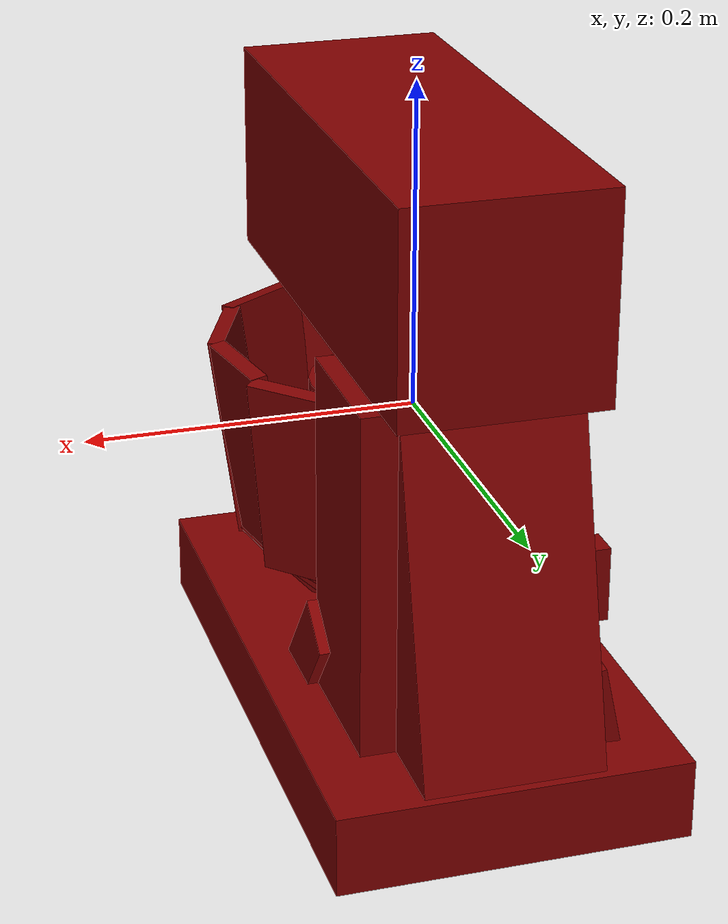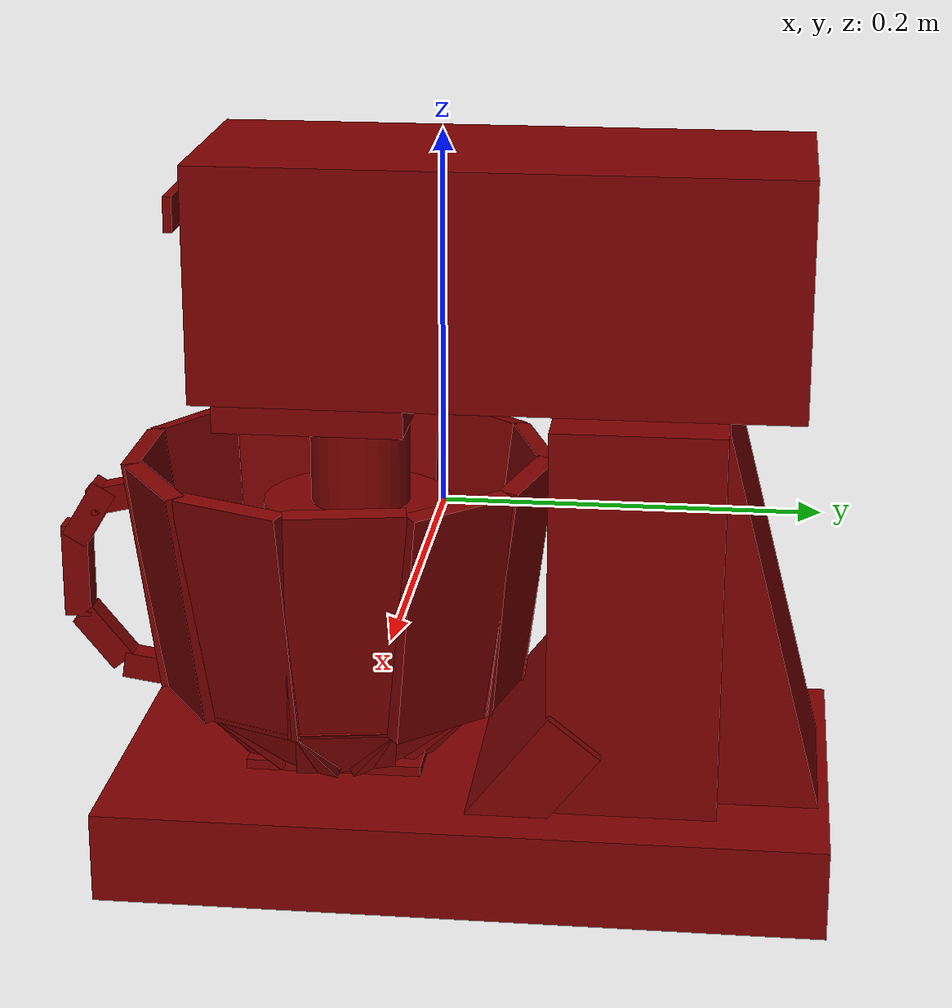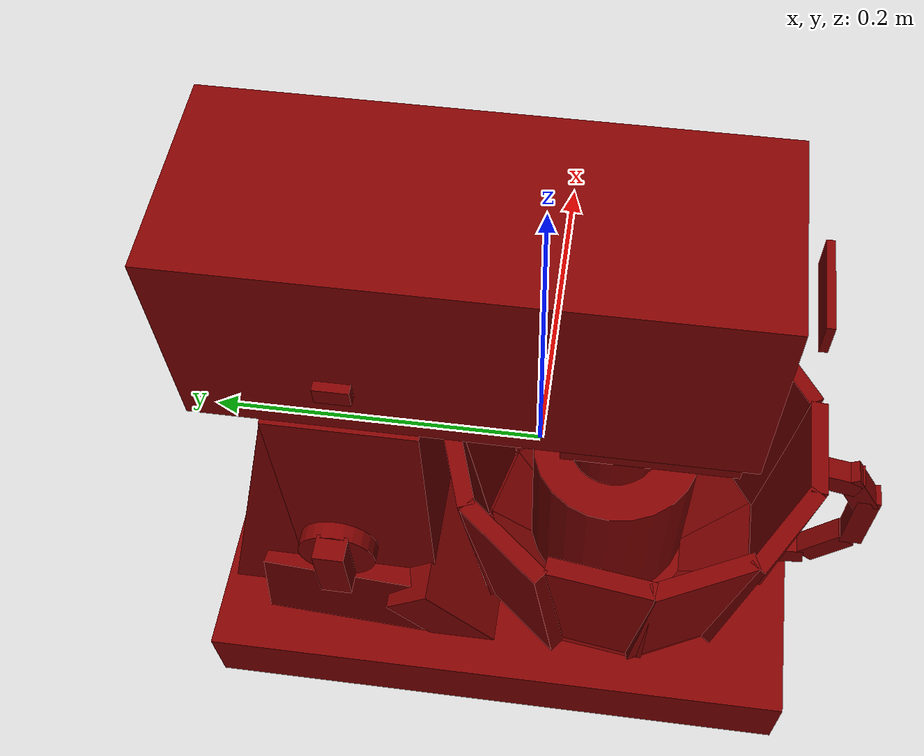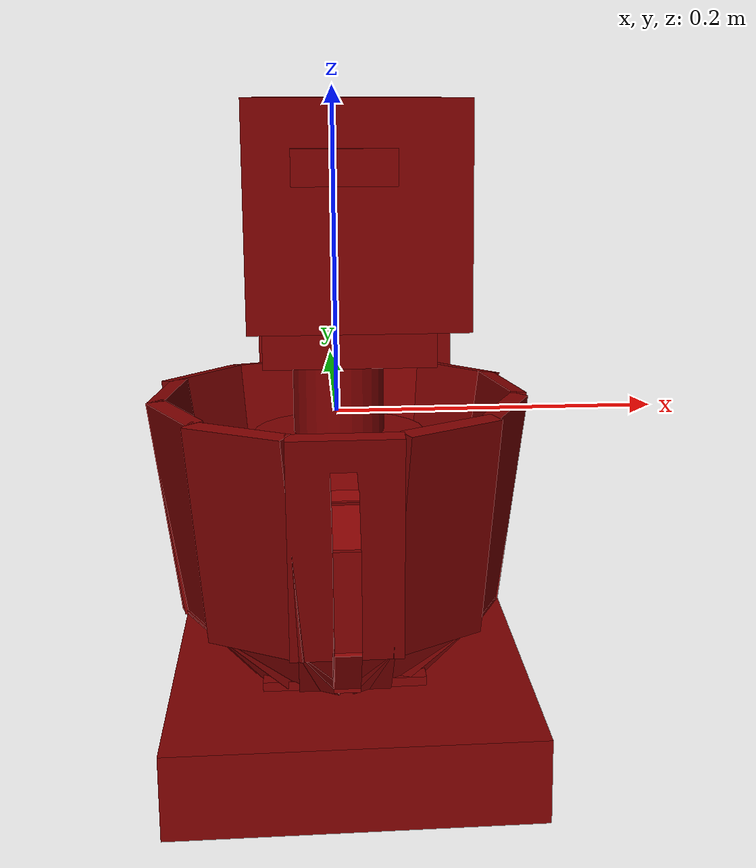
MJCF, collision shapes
<?xml version='1.0' encoding='UTF-8'?>
<mujoco model="model">
  <option timestep="0.002" gravity="0.0 0.0 -9.81"/>
  <compiler angle="radian"/>
  <asset>
    <mesh file="visuals/Blender001.obj" name="Blender001_vis"/>
    <mesh file="visuals/Body001.obj" name="Body001_vis"/>
    <mesh file="visuals/Button001.obj" name="Button001_vis"/>
    <mesh file="visuals/Container001_Clear.obj" name="Container001_Clear_vis"/>
    <mesh file="visuals/Knob001.obj" name="Knob001_vis"/>
    <mesh file="visuals/Lid001.obj" name="Lid001_vis"/>
    <texture file="visuals/T_BC001.png" name="Body001_material" type="2d"/>
    <material name="Body001_material" rgba="1 1 1 1.0" texture="Body001_material" shininess="0.141421377658844" specular="2"/>
    <texture file="visuals/T_BC001.png" name="Container001_Clear_material" type="2d"/>
    <material name="Container001_Clear_material" rgba="1 1 1 0.699999988079071" texture="Container001_Clear_material" shininess="0.5" specular="0.3103448502657381"/>
    <texture file="visuals/T_BC001.png" name="Knob001_material" type="2d"/>
    <material name="Knob001_material" rgba="1 1 1 1.0" texture="Knob001_material" shininess="0.141421377658844" specular="0.3103448502657381"/>
    <texture file="visuals/T_BC001.png" name="Lid001_material" type="2d"/>
    <material name="Lid001_material" rgba="1 1 1 1.0" texture="Lid001_material" shininess="0.141421377658844" specular="2"/>
    <texture file="visuals/T_BC001.png" name="Blender001_material" type="2d"/>
    <material name="Blender001_material" rgba="1 1 1 1.0" texture="Blender001_material" shininess="0.141421377658844" specular="2"/>
    <texture file="visuals/T_BC001.png" name="Button001_material" type="2d"/>
    <material name="Button001_material" rgba="1 1 1 1.0" texture="Button001_material" shininess="0.141421377658844" specular="0.3103448502657381"/>
  </asset>
  <default>
    <default class="visual">
      <geom conaffinity="0" contype="0" group="1" type="mesh"/>
    </default>
    <default class="collision">
      <geom group="0" rgba="0.5 0 0 0.5"/>
    </default>
    <default class="spawn">
      <geom group="0" rgba="1 1 1 0.5" contype="0" conaffinity="0"/>
      <site group="0" rgba="1 1 1 0.5"/>
    </default>
    <default class="region">
      <geom group="1" conaffinity="0" contype="0" rgba="0 1 0 0"/>
    </default>
  </default>
  <worldbody>
    <body>
      <body name="object">
        <geom mesh="Body001_vis" type="mesh" solimp="0.998 0.998 0.001" solref="0.001 1" friction="0.95 0.3 0.1" class="visual" material="Body001_material"/>
        <geom class="collision" type="box" pos="0.004136181436479092 0.01786668971180916 -0.16853773593902588" size="0.10509423911571503 0.19198651611804962 0.024382835254073143" quat="1.0 0.0 0.0 0.0" density="1000.0"/>
        <geom class="collision" type="box" pos="0.014389991760253906 0.10672037303447723 -0.04465880244970322" size="0.06403841078281403 0.04471368342638016 0.10858464986085892" quat="1.0 0.0 0.0 0.0" density="1000.0"/>
        <geom class="collision" type="box" pos="0.00377702247351408 0.1449136734008789 -0.053486332297325134" size="0.05342536419630051 0.03497549518942833 0.10858449339866638" quat="0.9921606779098511 0.12496867775917053 0.0 0.0" density="1000.0"/>
        <geom class="collision" type="box" pos="-0.051647596061229706 0.12047339975833893 -0.1377274990081787" size="0.018421867862343788 0.05432158708572388 0.03744156286120415" quat="0.9942537546157837 0.005240248050540686 0.10371925681829453 -0.025967644527554512" density="1000.0"/>
        <geom class="collision" type="box" pos="0.004668226465582848 0.055716026574373245 -0.12692657113075256" size="0.0801771879196167 0.01732339896261692 0.035333048552274704" quat="0.9452009797096252 -0.32648903131484985 8.213555405049802e-17 -3.843171288608135e-18" density="1000.0"/>
        <body name="Container001_Clear">
          <joint axis="0.0 0.0 1.0" pos="-0.0005257651209831238 -0.0789135992527008 -0.059751711785793304" limited="true" name="Container001_Clear_joint" range="0.0 0.1" type="slide" damping="1" frictionloss="1" armature=".01" stiffness="0.05"/>
          <geom mesh="Container001_Clear_vis" type="mesh" solimp="0.998 0.998 0.001" solref="0.001 1" friction="0.95 0.3 0.1" class="visual" material="Container001_Clear_material"/>
          <geom class="collision" type="box" pos="-0.0009703244431875646 -0.20282290875911713 -0.04803609475493431" size="0.006921510212123394 0.007254461292177439 0.0261028204113245" quat="1.0 0.0 0.0 0.0" density="1000.0"/>
          <geom class="collision" type="box" pos="-1.0378425940871239e-07 -0.15471623837947845 -0.0394369475543499" size="0.030952803790569305 0.005150009412318468 0.06397952884435654" quat="0.9977524280548096 0.0670078843832016 0.0 0.0" density="1000.0"/>
          <geom class="collision" type="box" pos="-1.0477378964424133e-07 -0.12336526811122894 -0.11784543097019196" size="0.026411505416035652 0.004394416231662035 0.029332507401704788" quat="0.920957088470459 0.38966402411460876 0.0 0.0" density="1000.0"/>
          <geom class="collision" type="box" pos="-0.0009703244431875646 -0.19401103258132935 -0.014867784455418587" size="0.006921510212123394 0.007254461292177439 0.017530929297208786" quat="0.9638471007347107 -0.26645591855049133 5.916509916448017e-17 3.427577361788592e-24" density="1000.0"/>
          <geom class="collision" type="box" pos="-0.0009703244431875646 -0.17678330838680267 -0.004273727536201477" size="0.006921510212123394 0.007254461292177439 0.017530929297208786" quat="0.7835782766342163 -0.6212930679321289 1.379548002814298e-16 1.4813077039224547e-23" density="1000.0"/>
          <geom class="collision" type="box" pos="-0.0009703244431875646 -0.18935756385326385 -0.08684796839952469" size="0.006921510212123394 0.007254461292177439 0.017530929297208786" quat="0.33292779326438904 -0.9429523348808289 2.0937751836641887e-16 -5.017840680117046e-26" density="1000.0"/>
          <geom class="collision" type="box" pos="-0.0009703244431875646 -0.1609417349100113 -0.10476876050233841" size="0.006921510212123394 0.007254461292177439 0.017530933022499084" quat="0.652040421962738 -0.7581841945648193 1.6835072317743818e-16 -1.721387738551245e-23" density="1000.0"/>
          <geom class="collision" type="box" pos="-1.043081283569336e-07 -0.05499269440770149 -0.13915318250656128" size="0.047284457832574844 0.047284457832574844 0.0026816660538315773" quat="1.0 0.0 0.0 0.0" density="1000.0"/>
          <geom class="collision" type="box" pos="-0.05187143757939339 -0.138958141207695 -0.03930528089404106" size="0.030952803790569305 0.005150009412318468 0.06397952884435654" quat="0.9580460786819458 0.06434125453233719 -0.018715236335992813 -0.2786712646484375" density="1000.0"/>
          <geom class="collision" type="box" pos="-0.03557918593287468 -0.11332201957702637 -0.11784543097019196" size="0.026411505416035652 0.004394416231662035 0.029332507401704788" quat="0.884306788444519 0.3741571307182312 -0.10883278399705887 -0.25722238421440125" density="1000.0"/>
          <geom class="collision" type="box" pos="-0.08415845781564713 -0.09748408198356628 -0.03880316764116287" size="0.030952800065279007 0.005150009412318468 0.06397952884435654" quat="0.843376636505127 0.05664019286632538 -0.035804279148578644 -0.5331283211708069" density="1000.0"/>
          <geom class="collision" type="box" pos="-0.060081835836172104 -0.08605004847049713 -0.11784543097019196" size="0.026411505416035652 0.004394416697323322 0.029332507401704788" quat="0.7784633636474609 0.329373836517334 -0.20820890367031097 -0.4920942485332489" density="1000.0"/>
          <geom class="collision" type="box" pos="-0.09156394004821777 -0.045626815408468246 -0.038659241050481796" size="0.030952803790569305 0.0051500084809958935 0.06397952884435654" quat="0.6574471592903137 0.04415338486433029 -0.05040373280644417 -0.7505152821540833" density="1000.0"/>
          <geom class="collision" type="box" pos="-0.06619956344366074 -0.0489947646856308 -0.11784543097019196" size="0.026411505416035652 0.004394416231662035 0.029332507401704788" quat="0.6068445444107056 0.2567606270313263 -0.29310762882232666 -0.6927493214607239" density="1000.0"/>
          <geom class="collision" type="box" pos="-0.07693206518888474 0.006053254008293152 -0.03965941071510315" size="0.030952805653214455 0.005150009412318468 0.06397952884435654" quat="0.4223255217075348 0.02836289256811142 -0.06070917472243309 -0.903964102268219" density="1000.0"/>
          <geom class="collision" type="box" pos="-0.051621995866298676 -0.015121791511774063 -0.11784543097019196" size="0.026411505416035652 0.004394416231662035 0.029332507401704788" quat="0.38981980085372925 0.16493578255176544 -0.3530358076095581 -0.8343874216079712" density="1000.0"/>
          <geom class="collision" type="box" pos="-0.03232595697045326 0.03676050156354904 -0.03965941071510315" size="0.030952807515859604 0.005150009412318468 0.06397952884435654" quat="0.15949712693691254 0.010711639188230038 -0.06614618748426437 -0.9849216341972351" density="1000.0"/>
          <geom class="collision" type="box" pos="-0.021911192685365677 0.005447320640087128 -0.11784543097019196" size="0.026411505416035652 0.004394416231662035 0.029332507401704788" quat="0.14722087979316711 0.062290310859680176 -0.38465312123298645 -0.9091138243675232" density="1000.0"/>
          <geom class="collision" type="box" pos="0.023164836689829826 0.039125777781009674 -0.03965941071510315" size="0.030952805653214455 0.005150009877979755 0.06397952884435654" quat="0.12265843152999878 0.008237604051828384 0.06649966537952423 0.9901842474937439" density="1000.0"/>
          <geom class="collision" type="box" pos="0.015112761408090591 0.007123492658138275 -0.11784543097019196" size="0.026411505416035652 0.004394416231662035 0.029332507401704788" quat="0.11321760714054108 0.04790325090289116 0.38670840859413147 0.9139713644981384" density="1000.0"/>
          <geom class="collision" type="box" pos="0.07140381634235382 0.011102169752120972 -0.03965941071510315" size="0.030952803790569305 0.005150009412318468 0.06397952884435654" quat="0.39618968963623047 0.026607634499669075 0.06149870902299881 0.9157202839851379" density="1000.0"/>
          <geom class="collision" type="box" pos="0.04735128581523895 -0.01149115338921547 -0.11784543097019196" size="0.026411505416035652 0.004394416697323322 0.029332507401704788" quat="0.365695595741272 0.15472863614559174 0.3576270639896393 0.8452388048171997" density="1000.0"/>
          <geom class="collision" type="box" pos="0.09048383682966232 -0.03943228721618652 -0.038523782044649124" size="0.030952805653214455 0.005150009412318468 0.06397952884435654" quat="0.639469563961029 0.04294602945446968 0.05143633112311363 0.7658907175064087" density="1000.0"/>
          <geom class="collision" type="box" pos="0.06449835747480392 -0.0448564775288105 -0.11784543097019196" size="0.026411505416035652 0.004394416231662035 0.029332507401704788" quat="0.590250551700592 0.2497396022081375 0.2991124093532562 0.7069414258003235" density="1000.0"/>
          <geom class="collision" type="box" pos="0.08475157618522644 -0.09489454329013824 -0.03934355080127716" size="0.030952805653214455 0.005150009412318468 0.06397952884435654" quat="0.8331063985824585 0.055950459092855453 0.03687281906604767 0.5490388870239258" density="1000.0"/>
          <geom class="collision" type="box" pos="0.06049749627709389 -0.0828029215335846 -0.11784543097019196" size="0.026411505416035652 0.004394416231662035 0.029332507401704788" quat="0.7689836025238037 0.3253629803657532 0.21442262828350067 0.5067801475524902" density="1000.0"/>
          <geom class="collision" type="box" pos="0.05268293246626854 -0.13739438354969025 -0.039264336228370667" size="0.030952803790569305 0.005150009412318468 0.06397952884435654" quat="0.9560536742210388 0.06420744955539703 0.019169272854924202 0.28543180227279663" density="1000.0"/>
          <geom class="collision" type="box" pos="0.036196500062942505 -0.11224480718374252 -0.11784543097019196" size="0.026411505416035652 0.004394416231662035 0.029332507401704788" quat="0.8824676871299744 0.3733789920806885 0.11147322505712509 0.2634628713130951" density="1000.0"/>
        </body>
        <body name="Knob001">
          <joint axis="1.0 0.0 0.0" pos="-0.05766218528151512 0.12135416269302368 -0.06791997700929642" limited="true" name="Knob001_joint" range="-0.9599310885968813 4.014257279586958" type="hinge" damping="0.05" armature="0.001" springref="-2"/>
          <geom mesh="Knob001_vis" type="mesh" solimp="0.998 0.998 0.001" solref="0.001 1" friction="0.95 0.3 0.1" class="visual" material="Knob001_material"/>
          <geom class="collision" type="cylinder" pos="-0.05683620646595955 0.12175780534744263 -0.06811822205781937" size="0.024889398366212845 0.005572882946580648" quat="0.4999999701976776 0.5 0.5 0.5" density="1000.0"/>
          <geom class="collision" type="box" pos="-0.06853212416172028 0.12161707878112793 -0.06752558797597885" size="0.008209016174077988 0.009878141805529594 0.022965842857956886" quat="1.0 0.0 0.0 0.0" density="1000.0"/>
        </body>
        <body name="Lid001">
          <joint axis="-1.0 0.0 0.0" pos="0.002328546717762947 0.14872345328330994 0.05424878001213074" limited="true" name="Lid001_joint" range="0.0 1.5707963267948966" type="hinge" damping="1" frictionloss="1" armature=".01" stiffness="0.05"/>
          <geom mesh="Lid001_vis" type="mesh" solimp="0.998 0.998 0.001" solref="0.001 1" friction="0.95 0.3 0.1" class="visual" material="Lid001_material"/>
          <geom class="collision" type="box" pos="0.010298898443579674 0.03381333500146866 0.1311367154121399" size="0.06033923849463463 0.15627539157867432 0.06153511255979538" quat="1.0 0.0 0.0 0.0" density="1000.0"/>
          <geom class="collision" type="box" pos="0.004928323905915022 -0.06464510411024094 0.060873206704854965" size="0.04720825329422951 0.04983757808804512 0.011391673237085342" quat="1.0 0.0 0.0 0.0" density="1000.0"/>
          <geom class="collision" type="box" pos="0.002500434871762991 -0.13834059238433838 0.15823471546173096" size="0.02741134539246559 0.0023132292553782463 0.009521028026938438" quat="1.0 0.0 0.0 0.0" density="1000.0"/>
          <body name="Blender001">
            <joint axis="0.0 0.0 1.0" pos="0.002446327358484268 -0.04591413587331772 -0.039893798530101776" limited="false" name="Blender001_joint" range="0 360" type="hinge" damping="1" frictionloss="1" armature=".01" stiffness="0.05"/>
            <geom mesh="Blender001_vis" type="mesh" solimp="0.998 0.998 0.001" solref="0.001 1" friction="0.95 0.3 0.1" class="visual" material="Blender001_material"/>
            <geom class="collision" type="cylinder" pos="-1.043081283569336e-07 -0.045039672404527664 0.020107004791498184" size="0.02678520604968071 0.02678520604968071" quat="1.0 0.0 0.0 0.0" density="1000.0"/>
            <geom class="collision" type="cylinder" pos="-1.043081283569336e-07 -0.04667535796761513 -0.05161716416478157" size="0.050621673464775085 0.050621673464775085" quat="1.0 0.0 0.0 0.0" density="1000.0"/>
            <geom class="collision" type="cylinder" pos="-1.043081283569336e-07 -0.04667535796761513 -0.07953795045614243" size="0.011203723028302193 0.047780200839042664" quat="1.0 0.0 0.0 0.0" density="1000.0"/>
          </body>
          <body name="Button001">
            <joint axis="1.0 0.0 0.0" pos="-0.05350938439369202 0.10299219936132431 0.10913656651973724" limited="true" name="Button001_joint" range="0.0 0.004" type="slide" damping="1" frictionloss="1" armature=".01" stiffness="0.05"/>
            <geom mesh="Button001_vis" type="mesh" solimp="0.998 0.998 0.001" solref="0.001 1" friction="0.95 0.3 0.1" class="visual" material="Button001_material"/>
            <geom class="collision" type="box" pos="-0.053854845464229584 0.10299219936132431 0.10913656651973724" size="0.0029481614474207163 0.009894559159874916 0.00558013841509819" quat="1.0 0.0 0.0 0.0" density="1000.0"/>
          </body>
        </body>
        <geom class="region" name="reg_main" type="box" pos="0.003811003640294075 0.018094919621944427 0.0" size="0.10610829293727875 0.19221454858779907 0.19392642378807068"/>
      </body>
    </body>
  </worldbody>
  <actuator>
    <motor name="Container001_Clear_joint_actuator" joint="Container001_Clear_joint" gear="100"/>
    <motor name="Knob001_joint_actuator" joint="Knob001_joint" gear="10"/>
    <motor name="Lid001_joint_actuator" joint="Lid001_joint" gear="15"/>
    <motor name="Blender001_joint_actuator" joint="Blender001_joint" gear="10"/>
    <motor name="Button001_joint_actuator" joint="Button001_joint" gear="0.5"/>
  </actuator>
</mujoco>
